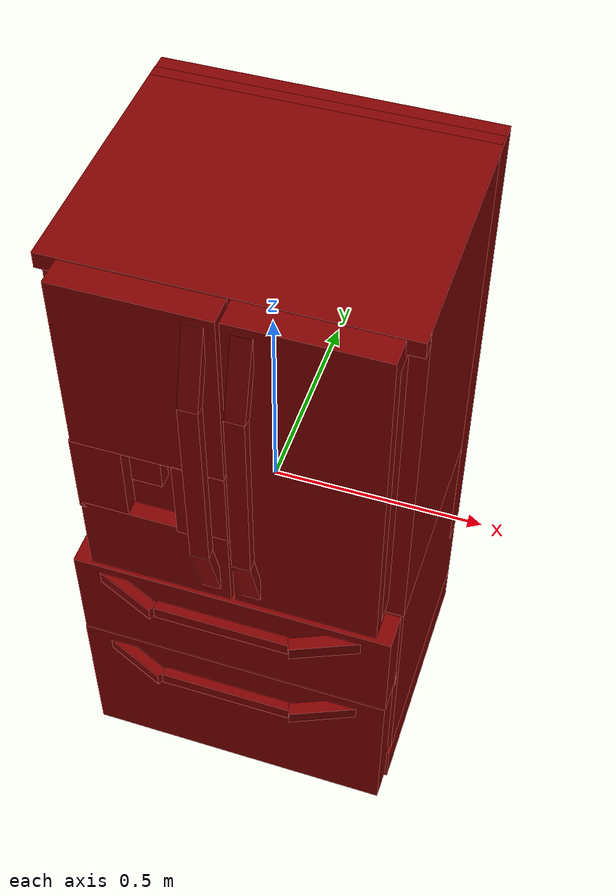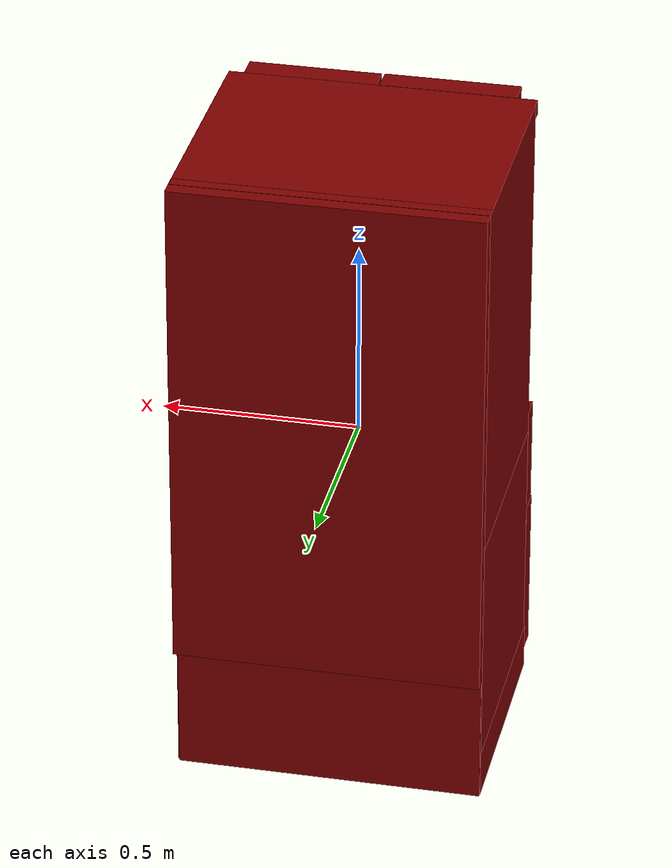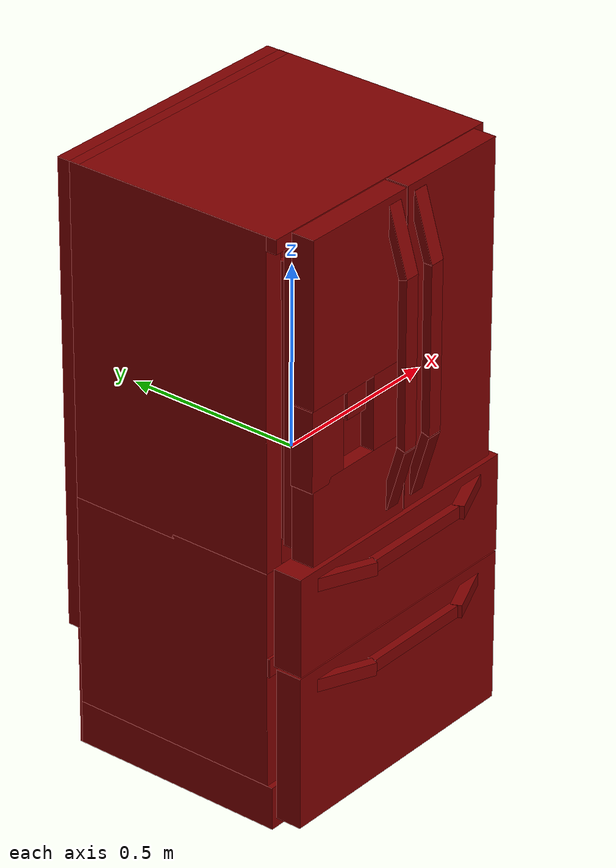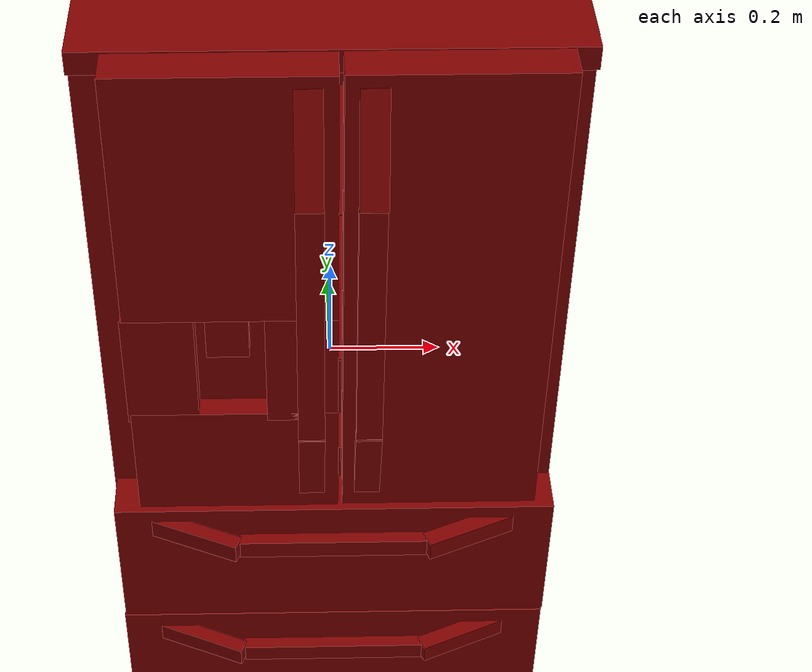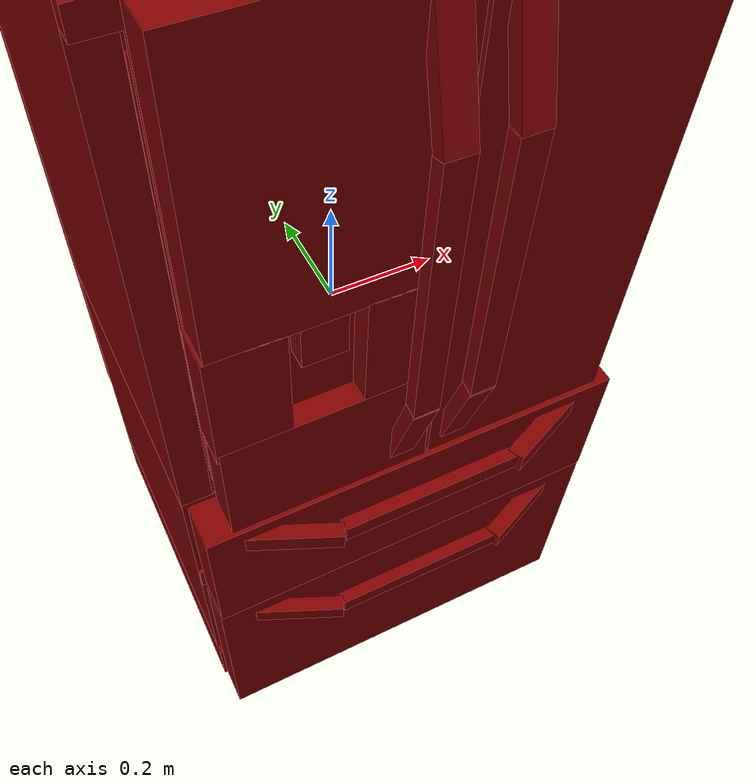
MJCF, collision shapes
<mujoco model="model">
  <compiler angle="radian"/>
  <asset>
    <mesh file="visuals/Body001.obj" name="Body001_vis"/>
    <mesh file="visuals/Body001_Clear.obj" name="Body001_Clear_vis"/>
    <mesh file="visuals/Door001.obj" name="Door001_vis"/>
    <mesh file="visuals/Door001_Clear.obj" name="Door001_Clear_vis"/>
    <mesh file="visuals/Door002.obj" name="Door002_vis"/>
    <mesh file="visuals/Door002_Clear.obj" name="Door002_Clear_vis"/>
    <mesh file="visuals/Drawer001.obj" name="Drawer001_vis"/>
    <mesh file="visuals/Drawer002.obj" name="Drawer002_vis"/>
    <mesh file="visuals/Drawer003.obj" name="Drawer003_vis"/>
    <texture file="visuals/T_BC001.png" name="Body001_material" type="2d"/>
    <material name="Body001_material" rgba="1 1 1 1.0" texture="Body001_material" shininess="0.2978498339653015" specular="1"/>
    <texture file="visuals/T_BC001.png" name="Body001_Clear_material" type="2d"/>
    <material name="Body001_Clear_material" rgba="1 1 1 0.27027028799057007" texture="Body001_Clear_material" shininess="0.5" specular="1"/>
    <texture file="visuals/T_BC001.png" name="Door001_material" type="2d"/>
    <material name="Door001_material" rgba="1 1 1 1.0" texture="Door001_material" shininess="0.2978498339653015" specular="1"/>
    <texture file="visuals/T_BC001.png" name="Door001_Clear_material" type="2d"/>
    <material name="Door001_Clear_material" rgba="1 1 1 0.27027028799057007" texture="Door001_Clear_material" shininess="0.5" specular="1"/>
    <texture file="visuals/T_BC001.png" name="Door002_material" type="2d"/>
    <material name="Door002_material" rgba="1 1 1 1.0" texture="Door002_material" shininess="0.2978498339653015" specular="1"/>
    <texture file="visuals/T_BC001.png" name="Door002_Clear_material" type="2d"/>
    <material name="Door002_Clear_material" rgba="1 1 1 0.27027028799057007" texture="Door002_Clear_material" shininess="0.5" specular="1"/>
    <texture file="visuals/T_BC001.png" name="Drawer001_material" type="2d"/>
    <material name="Drawer001_material" rgba="1 1 1 1.0" texture="Drawer001_material" shininess="0.2978498339653015" specular="1"/>
    <texture file="visuals/T_BC001.png" name="Drawer002_material" type="2d"/>
    <material name="Drawer002_material" rgba="1 1 1 1.0" texture="Drawer002_material" shininess="0.2978498339653015" specular="1"/>
    <texture file="visuals/T_BC001.png" name="Drawer003_material" type="2d"/>
    <material name="Drawer003_material" rgba="1 1 1 1.0" texture="Drawer003_material" shininess="0.2978498339653015" specular="1"/>
  </asset>
  <default>
    <default class="visual">
      <geom conaffinity="0" contype="0" group="1" type="mesh"/>
    </default>
    <default class="collision">
      <geom group="0" rgba="0.5 0 0 0.5"/>
    </default>
    <default class="spawn">
      <geom group="0" rgba="1 1 1 0.5" contype="0" conaffinity="0"/>
      <site group="0" rgba="1 1 1 0.5"/>
    </default>
    <default class="region">
      <geom group="1" conaffinity="0" contype="0" rgba="0 1 0 0"/>
    </default>
  </default>
  <worldbody>
    <body>
      <body name="object">
        <geom mesh="Body001_vis" type="mesh" solimp="0.998 0.998 0.001" solref="0.001 1" density="100" friction="0.95 0.3 0.1" class="visual" material="Body001_material"/>
        <geom class="collision" type="box" pos="0.359909 0.058113 0.361855" size="0.027143720537424088 0.29854142665863037 0.45245838165283203" quat="1.0 0.0 0.0 0.0"/>
        <geom class="collision" type="box" pos="-0.360208 0.058113 0.356553" size="0.02697124518454075 0.2985418736934662 0.45776039361953735" quat="1.0 0.0 0.0 0.0"/>
        <geom class="collision" type="box" pos="0.000188 0.344525 0.168060" size="0.38687875866889954 0.04916088655591011 0.6455963253974915" quat="1.0 0.0 0.0 0.0"/>
        <geom class="collision" type="box" pos="-0.001632 0.308223 -0.449676" size="0.3846137523651123 0.05548565834760666 0.36298856139183044" quat="1.0 0.0 0.0 0.0"/>
        <geom class="collision" type="box" pos="-0.000583 0.137514 -0.623895" size="0.35854974389076233 0.10725203901529312 0.060192689299583435" quat="0.8052064180374146 0.5929946303367615 -1.3167124518090139e-16 1.2232067335595694e-24"/>
        <geom class="collision" type="box" pos="-0.001111 0.058262 0.775343" size="0.3859788775444031 0.2983954846858978 0.03916257619857788" quat="1.0 0.0 0.0 0.0"/>
        <geom class="collision" type="box" pos="-0.000583 0.062967 -0.061921" size="0.3585202395915985 0.29809075593948364 0.03860937058925629" quat="1.0 0.0 0.0 0.0"/>
        <geom class="collision" type="box" pos="-0.351226 0.058113 -0.440472" size="0.035953085869550705 0.2985450029373169 0.3500573933124542" quat="1.0 0.0 0.0 0.0"/>
        <geom class="collision" type="box" pos="0.351980 0.058113 -0.440472" size="0.03483233600854874 0.29854562878608704 0.350058376789093" quat="1.0 0.0 0.0 0.0"/>
        <geom class="collision" type="box" pos="-0.001632 -0.211395 -0.351708" size="0.3846193850040436 0.03633418679237366 0.025894157588481903" quat="1.0 0.0 0.0 0.0"/>
        <geom class="collision" type="box" pos="-0.000203 0.049934 -0.751486" size="0.3870176672935486 0.30672550201416016 0.060063838958740234" quat="1.0 0.0 0.0 0.0"/>
        <geom class="collision" type="box" pos="-0.000583 0.198242 -0.588251" size="0.35854974389076233 0.10725203901529312 0.07130120694637299" quat="0.6569743752479553 0.7539129257202148 -1.6740228450452978e-16 8.92800271459846e-24"/>
        <geom class="collision" type="box" pos="0.287020 0.090118 0.356553" size="0.027454588562250137 0.25388234853744507 0.45777854323387146" quat="1.0 0.0 0.0 0.0"/>
        <geom class="collision" type="box" pos="-0.276331 0.092563 0.356553" size="0.02745465375483036 0.25630542635917664 0.4577794373035431" quat="1.0 0.0 0.0 0.0"/>
        <geom class="collision" type="box" pos="-0.000290 0.027893 0.795216" size="0.38681960105895996 0.2984515130519867 0.019383504986763" quat="1.0 0.0 0.0 0.0"/>
        <body name="Body001_Clear">
          <geom mesh="Body001_Clear_vis" type="mesh" solimp="0.998 0.998 0.001" solref="0.001 1" density="100" friction="0.95 0.3 0.1" class="visual" material="Body001_Clear_material"/>
          <geom class="collision" type="box" pos="-0.001629 0.078796 0.428862" size="0.32924920320510864 0.23193670809268951 0.00248630135320127" quat="1.0 0.0 0.0 0.0"/>
          <geom class="collision" type="box" pos="-0.001629 0.078796 0.112846" size="0.32924920320510864 0.23193807899951935 0.00248630135320127" quat="1.0 0.0 0.0 0.0"/>
        </body>
        <body name="Door001">
          <joint axis="0.0 0.0 -1.0" pos="-0.340697 -0.294028 0.356832" limited="true" name="Door001_joint" range="0.0 1.5707963267948966" type="hinge" damping="1" frictionloss="1" armature=".01" stiffness="0.05"/>
          <geom mesh="Door001_vis" type="mesh" solimp="0.998 0.998 0.001" solref="0.001 1" density="100" friction="0.95 0.3 0.1" class="visual" material="Door001_material"/>
          <geom class="collision" type="box" pos="-0.036752 -0.380201 0.381017" size="0.02168096788227558 0.012337328866124153 0.23356866836547852" quat="1.0 0.0 0.0 0.0"/>
          <geom class="collision" type="box" pos="-0.163550 -0.305749 0.587928" size="0.17120324075222015 0.03264227509498596 0.22588777542114258" quat="1.0 0.0 0.0 0.0"/>
          <geom class="collision" type="box" pos="-0.161362 -0.273304 0.370320" size="0.16949476301670074 0.02694264054298401 0.4013972878456116" quat="1.0 0.0 0.0 0.0"/>
          <geom class="collision" type="box" pos="-0.171434 -0.252157 0.354679" size="0.15805034339427948 0.02694264054298401 0.372410386800766" quat="1.0 0.0 0.0 0.0"/>
          <geom class="collision" type="box" pos="-0.163550 -0.305749 0.050917" size="0.17121140658855438 0.03264227509498596 0.1094156876206398" quat="1.0 0.0 0.0 0.0"/>
          <geom class="collision" type="box" pos="-0.050808 -0.305749 0.255017" size="0.05846968665719032 0.03264227509498596 0.10941576212644577" quat="1.0 0.0 0.0 0.0"/>
          <geom class="collision" type="box" pos="-0.280029 -0.305749 0.255017" size="0.05846972391009331 0.03264227509498596 0.10941583663225174" quat="1.0 0.0 0.0 0.0"/>
          <geom class="collision" type="box" pos="-0.169260 -0.303925 0.324365" size="0.034566909074783325 0.0308175478130579 0.04006846249103546" quat="1.0 0.0 0.0 0.0"/>
          <geom class="collision" type="box" pos="-0.036752 -0.353958 0.700492" size="0.021682079881429672 0.012337331660091877 0.09330476820468903" quat="0.9893605709075928 -0.14548416435718536 -0.0 0.0"/>
          <geom class="collision" type="box" pos="-0.036752 -0.355112 0.066039" size="0.021682079881429672 0.012337331660091877 0.09330476820468903" quat="0.989677906036377 0.14330966770648956 0.0 0.0"/>
          <body name="Door001_Clear">
            <geom mesh="Door001_Clear_vis" type="mesh" solimp="0.998 0.998 0.001" solref="0.001 1" density="100" friction="0.95 0.3 0.1" class="visual" material="Door001_Clear_material"/>
            <geom class="collision" type="box" pos="-0.188417 -0.225583 0.325100" size="0.12944050133228302 0.05434567481279373 0.002050619339570403" quat="1.0 0.0 0.0 0.0"/>
            <geom class="collision" type="box" pos="-0.059810 -0.223968 0.346662" size="0.0027224337682127953 0.05273094028234482 0.023053614422678947" quat="1.0 0.0 0.0 0.0"/>
            <geom class="collision" type="box" pos="-0.316562 -0.223968 0.346662" size="0.002722424454987049 0.0527309887111187 0.023053688928484917" quat="1.0 0.0 0.0 0.0"/>
            <geom class="collision" type="box" pos="-0.188186 -0.171576 0.365053" size="0.1256365031003952 0.0010846159420907497 0.0033590025268495083" quat="1.0 0.0 0.0 0.0"/>
            <geom class="collision" type="box" pos="-0.188417 -0.225583 0.481524" size="0.129442036151886 0.054345857352018356 0.0020506379660218954" quat="1.0 0.0 0.0 0.0"/>
            <geom class="collision" type="box" pos="-0.059810 -0.223968 0.503087" size="0.0027224577497690916 0.05273112654685974 0.023053912445902824" quat="1.0 0.0 0.0 0.0"/>
            <geom class="collision" type="box" pos="-0.316562 -0.223968 0.503087" size="0.0027224491350352764 0.05273117497563362 0.023053986951708794" quat="1.0 0.0 0.0 0.0"/>
            <geom class="collision" type="box" pos="-0.188186 -0.171576 0.521478" size="0.1256375014781952 0.0010846188524737954 0.003359039779752493" quat="1.0 0.0 0.0 0.0"/>
          </body>
        </body>
        <body name="Door002">
          <joint axis="0.0 0.0 1.0" pos="0.343953 -0.294474 0.375739" limited="true" name="Door002_joint" range="0.0 1.5707963267948966" type="hinge" damping="1" frictionloss="1" armature=".01" stiffness="0.05"/>
          <geom mesh="Door002_vis" type="mesh" solimp="0.998 0.998 0.001" solref="0.001 1" density="100" friction="0.95 0.3 0.1" class="visual" material="Door002_material"/>
          <geom class="collision" type="box" pos="0.057218 -0.380400 0.381017" size="0.02137182466685772 0.01253611408174038 0.23357336223125458" quat="1.0 0.0 0.0 0.0"/>
          <geom class="collision" type="box" pos="0.182007 -0.304415 0.377629" size="0.16689445078372955 0.03211582824587822 0.43618637323379517" quat="1.0 0.0 0.0 0.0"/>
          <geom class="collision" type="box" pos="0.182007 -0.270349 0.356083" size="0.16691546142101288 0.027177613228559494 0.40031740069389343" quat="1.0 0.0 0.0 0.0"/>
          <geom class="collision" type="box" pos="0.194106 -0.251097 0.356236" size="0.13735146820545197 0.027177613228559494 0.37900686264038086" quat="1.0 0.0 0.0 0.0"/>
          <geom class="collision" type="box" pos="0.058461 -0.353958 0.700492" size="0.021682079881429672 0.012337331660091877 0.09330476820468903" quat="0.9893605709075928 -0.14548416435718536 -0.0 0.0"/>
          <geom class="collision" type="box" pos="0.057107 -0.355112 0.066039" size="0.021682079881429672 0.012337331660091877 0.09330476820468903" quat="0.989677906036377 0.14330966770648956 0.0 0.0"/>
          <body name="Door002_Clear">
            <geom mesh="Door002_Clear_vis" type="mesh" solimp="0.998 0.998 0.001" solref="0.001 1" density="100" friction="0.95 0.3 0.1" class="visual" material="Door002_Clear_material"/>
            <geom class="collision" type="box" pos="0.198330 -0.225583 0.325100" size="0.12425645440816879 0.05434613674879074 0.002050665905699134" quat="1.0 0.0 0.0 0.0"/>
            <geom class="collision" type="box" pos="0.321748 -0.223968 0.346662" size="0.0027224794030189514 0.052731405943632126 0.02305435948073864" quat="1.0 0.0 0.0 0.0"/>
            <geom class="collision" type="box" pos="0.075372 -0.223968 0.346662" size="0.0027224861551076174 0.05273145064711571 0.02305443398654461" quat="1.0 0.0 0.0 0.0"/>
            <geom class="collision" type="box" pos="0.198560 -0.171576 0.365053" size="0.12044332176446915 0.001084623159840703 0.00335909565910697" quat="1.0 0.0 0.0 0.0"/>
            <geom class="collision" type="box" pos="0.198330 -0.225583 0.481524" size="0.12425803393125534 0.054346323013305664 0.002050684532150626" quat="1.0 0.0 0.0 0.0"/>
            <geom class="collision" type="box" pos="0.321748 -0.223968 0.503087" size="0.0027225040830671787 0.05273158848285675 0.023054657503962517" quat="1.0 0.0 0.0 0.0"/>
            <geom class="collision" type="box" pos="0.075372 -0.223968 0.503087" size="0.0027225101366639137 0.05273163691163063 0.023054732009768486" quat="1.0 0.0 0.0 0.0"/>
            <geom class="collision" type="box" pos="0.198560 -0.171576 0.521478" size="0.1204449012875557 0.0010846260702237487 0.0033591329120099545" quat="1.0 0.0 0.0 0.0"/>
          </body>
        </body>
        <body name="Drawer001">
          <joint axis="0.0 -1.0 0.0" pos="0.001014 -0.133920 -0.561322" limited="true" name="Drawer001_joint" range="0.0 0.25" type="slide" damping="1" frictionloss="1" armature=".01" stiffness="0.05"/>
          <geom mesh="Drawer001_vis" type="mesh" solimp="0.998 0.998 0.001" solref="0.001 1" density="100" friction="0.95 0.3 0.1" class="visual" material="Drawer001_material"/>
          <geom class="collision" type="box" pos="0.004326 -0.111392 -0.676569" size="0.27537819743156433 0.15478265285491943 0.0027201969642192125" quat="1.0 0.0 0.0 0.0"/>
          <geom class="collision" type="box" pos="0.280138 -0.107514 -0.545668" size="0.025485331192612648 0.15866568684577942 0.13257615268230438" quat="1.0 0.0 0.0 0.0"/>
          <geom class="collision" type="box" pos="-0.277274 -0.107514 -0.545668" size="0.019958391785621643 0.15866568684577942 0.1325760930776596" quat="1.0 0.0 0.0 0.0"/>
          <geom class="collision" type="box" pos="0.004326 0.068329 -0.571143" size="0.29865118861198425 0.008362683467566967 0.09997935593128204" quat="0.9911026954650879 -0.13309930264949799 0.0 0.0"/>
          <geom class="collision" type="box" pos="-0.000121 -0.302964 -0.561322" size="0.38272878527641296 0.03680518642067909 0.21408507227897644" quat="1.0 0.0 0.0 0.0"/>
          <geom class="collision" type="box" pos="-0.000920 -0.382467 -0.396499" size="0.16135644912719727 0.011311881244182587 0.017042309045791626" quat="1.0 0.0 0.0 0.0"/>
          <geom class="collision" type="box" pos="0.238962 -0.355220 -0.396379" size="0.08587073534727097 0.01505428645759821 0.017603665590286255" quat="0.9793906807899475 0.0 0.0 0.2019749879837036"/>
          <geom class="collision" type="box" pos="-0.243256 -0.357477 -0.396379" size="0.08587072789669037 0.013152176514267921 0.017603663727641106" quat="0.9793907403945923 0.0 0.0 -0.20197463035583496"/>
          <geom class="collision" type="box" pos="0.000847 -0.074988 -0.612343" size="0.010680019855499268 0.1267247200012207 0.06990315765142441" quat="1.0 0.0 0.0 0.0"/>
          <geom class="collision" type="box" pos="0.280138 -0.032852 -0.447484" size="0.025485331192612648 0.15866568684577942 0.034893859177827835" quat="1.0 0.0 0.0 0.0"/>
          <geom class="collision" type="box" pos="0.280138 0.050047 -0.538530" size="0.025485331192612648 0.11963428556919098 0.034643225371837616" quat="0.796074390411377 0.6051988005638123 1.343811153374047e-16 -1.0018506990580435e-22"/>
          <geom class="collision" type="box" pos="-0.280332 0.050047 -0.538530" size="0.025485331192612648 0.11963428556919098 0.034643225371837616" quat="0.796074390411377 0.6051988005638123 1.343811153374047e-16 -1.0018506990580435e-22"/>
          <geom class="collision" type="box" pos="-0.280332 -0.032852 -0.447484" size="0.025485331192612648 0.15866568684577942 0.034893859177827835" quat="1.0 0.0 0.0 0.0"/>
          <geom class="collision" type="box" pos="-0.253341 -0.085553 -0.571984" size="0.020802145823836327 0.03368447721004486 0.1062593013048172" quat="1.0 0.0 0.0 0.0"/>
          <geom class="collision" type="box" pos="0.257873 -0.085553 -0.571984" size="0.020802145823836327 0.03368447721004486 0.1062593013048172" quat="1.0 0.0 0.0 0.0"/>
          <geom class="collision" type="box" pos="0.001374 -0.234452 -0.531530" size="0.31068673729896545 0.032359808683395386 0.15073318779468536" quat="1.0 0.0 0.0 0.0"/>
        </body>
        <body name="Drawer002">
          <joint axis="0.0 -1.0 0.0" pos="0.001014 -0.075600 -0.206923" limited="true" name="Drawer002_joint" range="0.0 0.3" type="slide" damping="1" frictionloss="1" armature=".01" stiffness="0.05"/>
          <geom mesh="Drawer002_vis" type="mesh" solimp="0.998 0.998 0.001" solref="0.001 1" density="100" friction="0.95 0.3 0.1" class="visual" material="Drawer002_material"/>
          <geom class="collision" type="box" pos="-0.009150 -0.062528 -0.321651" size="0.27537819743156433 0.20364704728126526 0.0027201951015740633" quat="1.0 0.0 0.0 0.0"/>
          <geom class="collision" type="box" pos="0.274539 -0.058649 -0.229499" size="0.03541669249534607 0.20752936601638794 0.08869507163763046" quat="1.0 0.0 0.0 0.0"/>
          <geom class="collision" type="box" pos="-0.266809 -0.058649 -0.229499" size="0.029786858707666397 0.20752936601638794 0.08869501948356628" quat="1.0 0.0 0.0 0.0"/>
          <geom class="collision" type="box" pos="0.004326 0.161447 -0.250725" size="0.29865118861198425 0.008406518027186394 0.08296908438205719" quat="0.9585145711898804 -0.2850435972213745 9.149510929898043e-18 2.302646245811321e-18"/>
          <geom class="collision" type="box" pos="0.001695 -0.298749 -0.207002" size="0.3824079632759094 0.04113614931702614 0.13647471368312836" quat="1.0 0.0 0.0 0.0"/>
          <geom class="collision" type="box" pos="-0.000920 -0.382467 -0.113411" size="0.16135233640670776 0.011310389265418053 0.017212312668561935" quat="1.0 0.0 0.0 0.0"/>
          <geom class="collision" type="box" pos="0.239144 -0.355642 -0.113623" size="0.08587073534727097 0.01551352720707655 0.01810661517083645" quat="0.9793906807899475 0.0 0.0 0.2019749879837036"/>
          <geom class="collision" type="box" pos="-0.243256 -0.357477 -0.113623" size="0.08587072789669037 0.013152177445590496 0.01810661517083645" quat="0.9793907403945923 0.0 0.0 -0.20197463035583496"/>
          <geom class="collision" type="box" pos="0.000847 -0.034308 -0.270321" size="0.010680019855499268 0.16740410029888153 0.047872502356767654" quat="1.0 0.0 0.0 0.0"/>
          <geom class="collision" type="box" pos="0.274539 0.036294 -0.167827" size="0.03541669249534607 0.20550929009914398 0.02835458517074585" quat="1.0 0.0 0.0 0.0"/>
          <geom class="collision" type="box" pos="0.274539 0.133028 -0.218269" size="0.023191457614302635 0.04744146391749382 0.0580790638923645" quat="0.9578086137771606 -0.2874067723751068 -6.3817123224809e-17 -2.024741478083862e-24"/>
          <geom class="collision" type="box" pos="-0.274129 0.133028 -0.218269" size="0.023191457614302635 0.04744146391749382 0.0580790638923645" quat="0.9578086137771606 -0.2874067723751068 -6.3817123224809e-17 -2.024741478083862e-24"/>
          <geom class="collision" type="box" pos="-0.274129 0.036294 -0.168493" size="0.03541669249534607 0.20550929009914398 0.027688996866345406" quat="1.0 0.0 0.0 0.0"/>
          <geom class="collision" type="box" pos="-0.002599 0.224770 -0.185898" size="0.3069462478160858 0.017033550888299942 0.010283710435032845" quat="1.0 0.0 0.0 0.0"/>
          <geom class="collision" type="box" pos="0.004685 -0.230108 -0.212652" size="0.3091334402561188 0.03516469523310661 0.10881350189447403" quat="1.0 0.0 0.0 0.0"/>
        </body>
        <body name="Drawer003">
          <joint axis="0.0 -1.0 0.0" pos="0.006038 0.071853 0.042777" limited="true" name="Drawer003_joint" range="0.0 0.3" type="slide" damping="1" frictionloss="1" armature=".01" stiffness="0.05"/>
          <geom mesh="Drawer003_vis" type="mesh" solimp="0.998 0.998 0.001" solref="0.001 1" density="100" friction="0.95 0.3 0.1" class="visual" material="Drawer003_material"/>
          <geom class="collision" type="box" pos="0.005866 0.074797 -0.018654" size="0.23600749671459198 0.2127971053123474 0.0038049649447202682" quat="1.0 0.0 0.0 0.0"/>
          <geom class="collision" type="box" pos="0.237608 0.074797 0.031938" size="0.006679152138531208 0.21279755234718323 0.05343661829829216" quat="1.0 0.0 0.0 0.0"/>
          <geom class="collision" type="box" pos="-0.225196 0.074797 0.031938" size="0.006502158008515835 0.21279801428318024 0.05343661829829216" quat="1.0 0.0 0.0 0.0"/>
          <geom class="collision" type="box" pos="0.005866 0.291717 0.031938" size="0.23600706458091736 0.004122864454984665 0.05343661829829216" quat="1.0 0.0 0.0 0.0"/>
          <geom class="collision" type="box" pos="0.005633 -0.145113 0.045396" size="0.25322747230529785 0.007113266736268997 0.06260725855827332" quat="1.0 0.0 0.0 0.0"/>
        </body>
        <geom class="region" name="reg_main" type="box" pos="-0.00010500000000002174 0.026961999999999986 0.0" size="0.38721 0.366817 0.81469"/>
      </body>
    </body>
  </worldbody>
  <actuator>
    <motor name="Door001_joint_actuator" joint="Door001_joint" gear="50"/>
    <motor name="Door002_joint_actuator" joint="Door002_joint" gear="50"/>
    <motor name="Drawer001_joint_actuator" joint="Drawer001_joint" gear="50"/>
    <motor name="Drawer002_joint_actuator" joint="Drawer002_joint" gear="50"/>
    <motor name="Drawer003_joint_actuator" joint="Drawer003_joint" gear="50"/>
  </actuator>
</mujoco>
